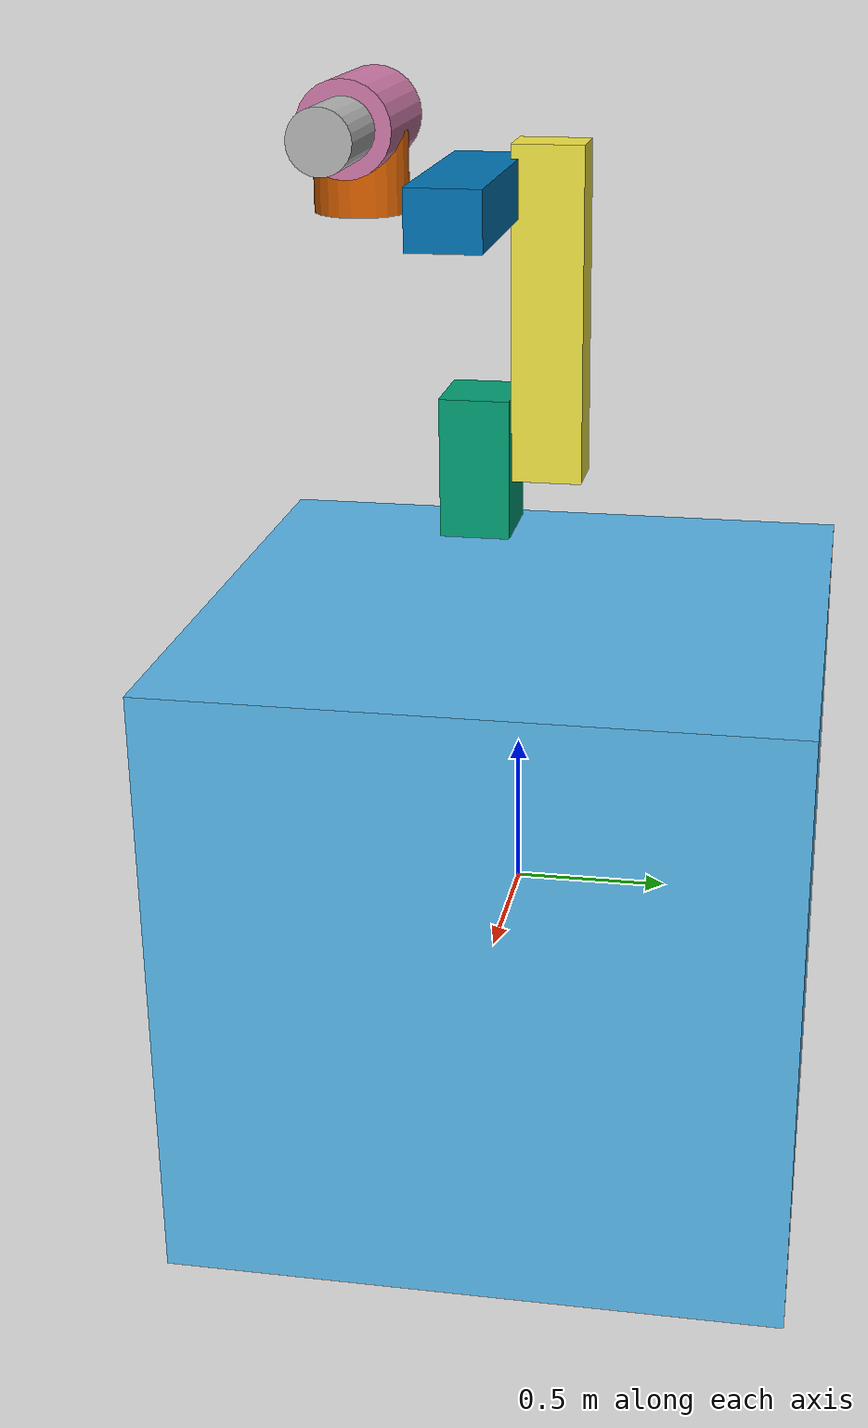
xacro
<?xml version="1.0"?>
<!-- |    This document was autogenerated by xacro from
/home/pablo/space_ws/src/ets_vii/urdf/ets_vii.xacro | -->
<!-- |    EDITING THIS FILE BY HAND IS NOT RECOMMENDED                                 | -->
<robot name="ets_vii">

    <link name="dummy_base_link" />

    <joint name="dummy_to_base_link" type="fixed">
        <parent link="dummy_base_link" />
        <child link="base_link" />
    </joint>

    <link name="base_link">
        <visual>
            <origin rpy="0 0 0" xyz="0 0 0" />
            <geometry>
                <box size="2 2 2" />
            </geometry>
        </visual>
        <collision>
            <geometry>
                <box size="2 2 2" />
            </geometry>
        </collision>

        <inertial>
            <mass value="2552" />
            <inertia ixx="6221" ixy="54.8" ixz="118.1" iyy="3581" iyz="-16.3" izz="7073" />
        </inertial>

    </link>

    <link name="link_1">
        <visual>
            <origin rpy="0 0 0" xyz="0.025 0 0.25" />
            <geometry>
                <box size="0.25 0.3 0.5" />
            </geometry>
        </visual>
        <collision>
            <geometry>
                <box size="0.25 0.3 0.5" />
            </geometry>
        </collision>

        <inertial>
            <mass value="35" />
            <inertia ixx="1.22" ixy="-0.0731" ixz="0.0007" iyy="0.513" iyz="0.113" izz="1.33" />
        </inertial>

    </link>
    <joint name="joint1" type="revolute">
        <axis xyz="0 0 1" />
        <limit effort="1000.0" lower="-3.0" upper="3.0" velocity="0.5" />
        <parent link="base_link" />
        <child link="link_1" />
        <origin rpy="0.0 0.0 1.570796325" xyz="-0.79 -0.29 1" />
    </joint>
    <link name="link_2">
        <visual>
            <origin rpy="0 0 0" xyz="0.125 0 0.435" />
            <geometry>
                <box size="0.25 0.2 1.17" />
            </geometry>
        </visual>
        <collision>
            <geometry>
                <box size="0.25 0.2 1.17" />
            </geometry>
        </collision>

        <inertial>
            <mass value="22.7" />
            <inertia ixx="0.10" ixy="0" ixz="-0.0021" iyy="3.38" iyz="0" izz="3.36" />
        </inertial>

    </link>
    <joint name="joint2" type="revolute">
        <axis xyz="1 0 0" />
        <limit effort="1000.0" lower="-3.0" upper="3.0" velocity="0.5" />
        <parent link="link_1" />
        <child link="link_2" />
        <origin xyz="0.15 0 0.35" />
    </joint>
    <link name="link_3">
        <visual>
            <origin rpy="0 0 0" xyz="0.025 0 0.350" />
            <geometry>
                <box size="0.25 0.2 0.86" />
            </geometry>
        </visual>
        <collision>
            <geometry>
                <box size="0.25 0.2 0.86" />
            </geometry>
        </collision>

        <inertial>
            <mass value="21.4" />
            <inertia ixx="0.43" ixy="0" ixz="-0.633" iyy="2.27" iyz="0" izz="1.91" />
        </inertial>

    </link>
    <joint name="joint3" type="revolute">
        <axis xyz="-1 0 0" />
        <limit effort="1000.0" lower="-3.0" upper="3.0" velocity="0.5" />
        <parent link="link_2" />
        <child link="link_3" />
        <origin rpy="1.570796325 0.0 0.0" xyz="-0.125 0 0.87" />
    </joint>
    <link name="link_4">
        <visual>
            <origin rpy="0 0 0" xyz="0 0 0.127" />
            <geometry>
                <cylinder length="0.250" radius="0.15" />
            </geometry>
        </visual>
        <collision>
            <geometry>
                <cylinder length="0.250" radius="0.15" />
            </geometry>
        </collision>

        <inertial>
            <mass value="16.8" />
            <inertia ixx="0.39" ixy="0" ixz="0.0168" iyy="0.396" iyz="0" izz="0.0727" />
        </inertial>

    </link>
    <joint name="joint4" type="revolute">
        <axis xyz="1 0 0" />
        <limit effort="1000.0" lower="-3.0" upper="3.0" velocity="0.5" />
        <parent link="link_3" />
        <child link="link_4" />
        <origin rpy="-1.570796325 0.0 0.0" xyz="-0.262 0 0.63" />
    </joint>
    <link name="link_5">
        <visual>
            <origin rpy="0 1.57079 0" xyz="0 0 0" />
            <geometry>
                <cylinder length="0.450" radius="0.15" />
            </geometry>
        </visual>
        <collision>
            <geometry>
                <cylinder length="0.450" radius="0.15" />
            </geometry>
        </collision>

        <inertial>
            <mass value="26.2" />
            <inertia ixx="0.57" ixy="0" ixz="-0.231" iyy="0.599" iyz="0" izz="0.129" />
        </inertial>

    </link>
    <joint name="joint5" type="revolute">
        <axis xyz="0 0 1" />
        <limit effort="1000.0" lower="-3.0" upper="3.0" velocity="0.5" />
        <parent link="link_4" />
        <child link="link_5" />
        <origin rpy="0.0 0.0 -1.570796325" xyz="0 0 0.277" />
    </joint>
    <link name="link_6">
        <visual>
            <origin rpy="0 1.57079 0" xyz="0.141 0 0" />
            <geometry>
                <cylinder length="0.307" radius="0.1" />
            </geometry>
        </visual>
        <collision>
            <geometry>
                <cylinder length="0.307" radius="0.1" />
            </geometry>
        </collision>

        <inertial>
            <mass value="18.1" />
            <inertia ixx="0.17" ixy="0.00078" ixz="-0.015" iyy="0.24" iyz="-0.000137" izz="0.14" />
        </inertial>

    </link>
    <joint name="joint6" type="revolute">
        <axis xyz="1 0 0" />
        <limit effort="1000.0" lower="-3.0" upper="3.0" velocity="0.5" />
        <parent link="link_5" />
        <child link="link_6" />
        <origin rpy="0 0 0" xyz="0.225 0 0" />
    </joint>

    <transmission name="trans_joint1">
        <type>transmission_interface/SimpleTransmission</type>
        <joint name="joint1">
            <hardwareInterface>hardware_interface/EffortJointInterface</hardwareInterface>
        </joint>
        <actuator name="joint1_motor">
            <hardwareInterface>hardware_interface/EffortJointInterface</hardwareInterface>
            <mechanicalReduction>1</mechanicalReduction>
        </actuator>
    </transmission>
    <transmission name="trans_joint2">
        <type>transmission_interface/SimpleTransmission</type>
        <joint name="joint2">
            <hardwareInterface>hardware_interface/EffortJointInterface</hardwareInterface>
        </joint>
        <actuator name="joint2_motor">
            <hardwareInterface>hardware_interface/EffortJointInterface</hardwareInterface>
            <mechanicalReduction>1</mechanicalReduction>
        </actuator>
    </transmission>
    <transmission name="trans_joint3">
        <type>transmission_interface/SimpleTransmission</type>
        <joint name="joint3">
            <hardwareInterface>hardware_interface/EffortJointInterface</hardwareInterface>
        </joint>
        <actuator name="joint3_motor">
            <hardwareInterface>hardware_interface/EffortJointInterface</hardwareInterface>
            <mechanicalReduction>1</mechanicalReduction>
        </actuator>
    </transmission>
    <transmission name="trans_joint4">
        <type>transmission_interface/SimpleTransmission</type>
        <joint name="joint4">
            <hardwareInterface>hardware_interface/EffortJointInterface</hardwareInterface>
        </joint>
        <actuator name="joint4_motor">
            <hardwareInterface>hardware_interface/EffortJointInterface</hardwareInterface>
            <mechanicalReduction>1</mechanicalReduction>
        </actuator>
    </transmission>
    <transmission name="trans_joint5">
        <type>transmission_interface/SimpleTransmission</type>
        <joint name="joint5">
            <hardwareInterface>hardware_interface/EffortJointInterface</hardwareInterface>
        </joint>
        <actuator name="joint5_motor">
            <hardwareInterface>hardware_interface/EffortJointInterface</hardwareInterface>
            <mechanicalReduction>1</mechanicalReduction>
        </actuator>
    </transmission>
    <transmission name="trans_joint6">
        <type>transmission_interface/SimpleTransmission</type>
        <joint name="joint6">
            <hardwareInterface>hardware_interface/EffortJointInterface</hardwareInterface>
        </joint>
        <actuator name="joint6_motor">
            <hardwareInterface>hardware_interface/EffortJointInterface</hardwareInterface>
            <mechanicalReduction>1</mechanicalReduction>
        </actuator>
    </transmission>
    <gazebo>
        <plugin name="gazebo_ros_control" filename="libgazebo_ros_control.so">
            <robotNamespace>/</robotNamespace>
        </plugin>
    </gazebo>
</robot>
